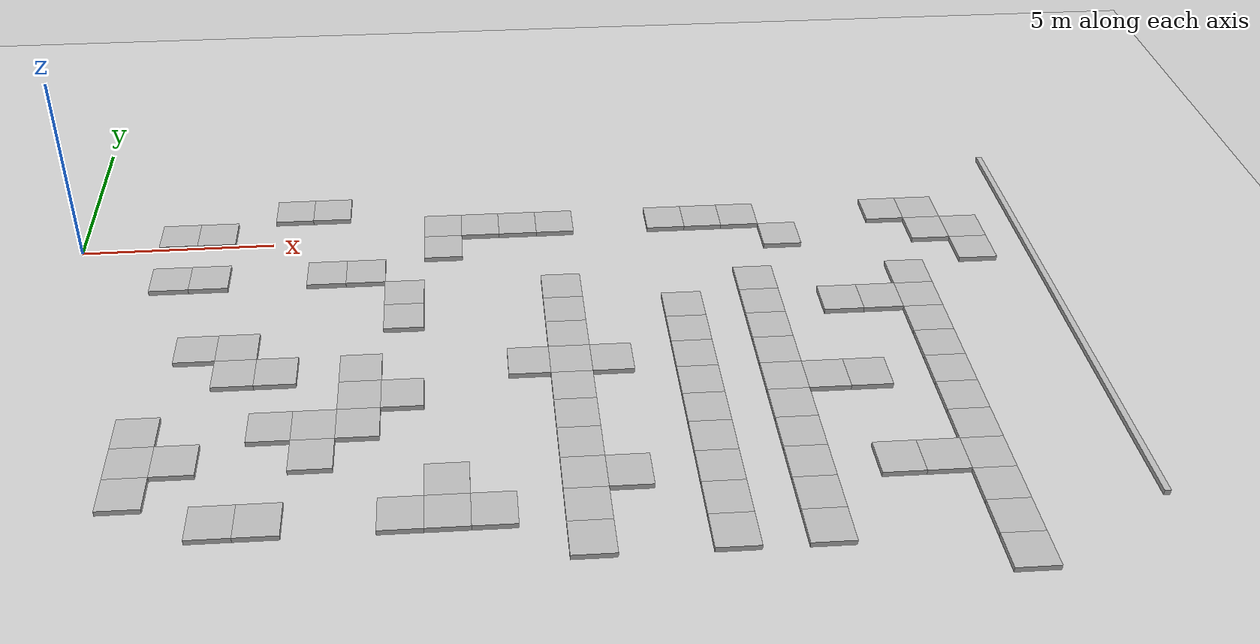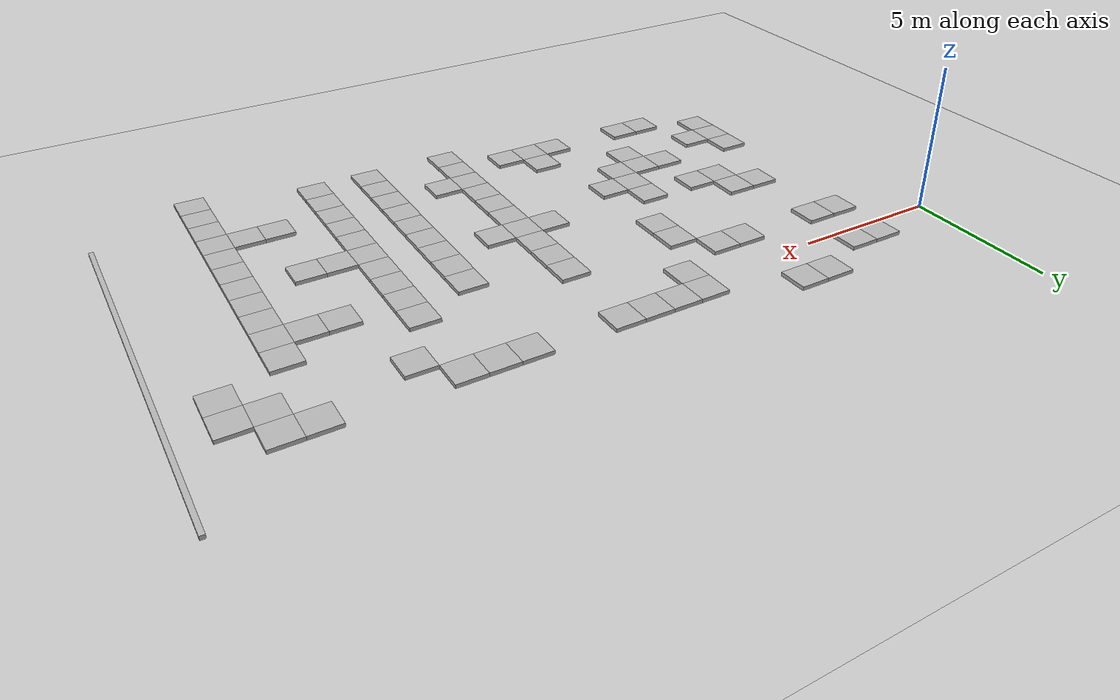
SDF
<sdf version="1.7">
 <world name="default">
  <model name="ground_plane">
   <static>1</static>
   <link name="link">
    <collision name="collision">
     <geometry><plane><normal>0 0 1</normal><size>100 100</size></plane></geometry>
     <surface>
      <contact><collide_bitmask>65535</collide_bitmask></contact>
      <friction><ode><mu>100</mu><mu2>50</mu2></ode></friction>
     </surface>
    </collision>
    <visual name="visual">
     <cast_shadows>0</cast_shadows>
     <geometry><plane><normal>0 0 1</normal><size>100 100</size></plane></geometry>
     <material>
      <script><uri>file://media/materials/scripts/gazebo.material</uri><name>Gazebo/Grey</name></script>
     </material>
    </visual>
   </link>
  </model>
  <model name="concrete_cube_1m_6">
   <static>1</static>
   <link name="link">
    <collision name="concrete_cube_1m">
     <pose>-0 0 0.3 0 -0 0</pose>
     <geometry><box><size>1 1 0.6</size></box></geometry>
    </collision>
    <visual name="concrete_cube_1m_visual">
     <geometry><mesh><uri>model://concrete_cube_1m/meshes/concrete_cube_1m.dae</uri></mesh></geometry>
    </visual>
   </link>
   <pose>6.5 1.5 0 0 -0 0</pose>
  </model>
  <model name="concrete_cube_1m_7">
   <static>1</static>
   <link name="link">
    <collision name="concrete_cube_1m">
     <pose>-0 0 0.3 0 -0 0</pose>
     <geometry><box><size>1 1 0.6</size></box></geometry>
    </collision>
    <visual name="concrete_cube_1m_visual">
     <geometry><mesh><uri>model://concrete_cube_1m/meshes/concrete_cube_1m.dae</uri></mesh></geometry>
    </visual>
   </link>
   <pose>5.5 1.5 0 0 -0 0</pose>
  </model>
  <model name="concrete_cube_1m_10">
   <static>1</static>
   <link name="link">
    <collision name="concrete_cube_1m">
     <pose>-0 0 0.3 0 -0 0</pose>
     <geometry><box><size>1 1 0.6</size></box></geometry>
    </collision>
    <visual name="concrete_cube_1m_visual">
     <geometry><mesh><uri>model://concrete_cube_1m/meshes/concrete_cube_1m.dae</uri></mesh></geometry>
    </visual>
   </link>
   <pose>4.5 -5.5 0 0 -0 0</pose>
  </model>
  <model name="concrete_cube_1m_11">
   <static>1</static>
   <link name="link">
    <collision name="concrete_cube_1m">
     <pose>-0 0 0.3 0 -0 0</pose>
     <geometry><box><size>1 1 0.6</size></box></geometry>
    </collision>
    <visual name="concrete_cube_1m_visual">
     <geometry><mesh><uri>model://concrete_cube_1m/meshes/concrete_cube_1m.dae</uri></mesh></geometry>
    </visual>
   </link>
   <pose>5.5 -5.5 0 0 -0 0</pose>
  </model>
  <model name="concrete_cube_1m_35">
   <static>1</static>
   <link name="link">
    <collision name="concrete_cube_1m">
     <pose>-0 0 0.3 0 -0 0</pose>
     <geometry><box><size>1 1 0.6</size></box></geometry>
    </collision>
    <visual name="concrete_cube_1m_visual">
     <geometry><mesh><uri>model://concrete_cube_1m/meshes/concrete_cube_1m.dae</uri></mesh></geometry>
    </visual>
   </link>
   <pose>9.5 0.5 0 0 -0 0</pose>
  </model>
  <model name="concrete_cube_1m_41">
   <static>1</static>
   <link name="link">
    <collision name="concrete_cube_1m">
     <pose>-0 0 0.3 0 -0 0</pose>
     <geometry><box><size>1 1 0.6</size></box></geometry>
    </collision>
    <visual name="concrete_cube_1m_visual">
     <geometry><mesh><uri>model://concrete_cube_1m/meshes/concrete_cube_1m.dae</uri></mesh></geometry>
    </visual>
   </link>
   <pose>3.5 0.5 0 0 -0 0</pose>
  </model>
  <model name="concrete_cube_1m_42">
   <static>1</static>
   <link name="link">
    <collision name="concrete_cube_1m">
     <pose>-0 0 0.3 0 -0 0</pose>
     <geometry><box><size>1 1 0.6</size></box></geometry>
    </collision>
    <visual name="concrete_cube_1m_visual">
     <geometry><mesh><uri>model://concrete_cube_1m/meshes/concrete_cube_1m.dae</uri></mesh></geometry>
    </visual>
   </link>
   <pose>2.5 0.5 0 0 -0 0</pose>
  </model>
  <model name="concrete_cube_1m_64">
   <static>1</static>
   <link name="link">
    <collision name="concrete_cube_1m">
     <pose>-0 0 0.3 0 -0 0</pose>
     <geometry><box><size>1 1 0.6</size></box></geometry>
    </collision>
    <visual name="concrete_cube_1m_visual">
     <geometry><mesh><uri>model://concrete_cube_1m/meshes/concrete_cube_1m.dae</uri></mesh></geometry>
    </visual>
   </link>
   <pose>7.5 -7.5 0 0 -0 0</pose>
  </model>
  <model name="concrete_cube_1m_65">
   <static>1</static>
   <link name="link">
    <collision name="concrete_cube_1m">
     <pose>-0 0 0.3 0 -0 0</pose>
     <geometry><box><size>1 1 0.6</size></box></geometry>
    </collision>
    <visual name="concrete_cube_1m_visual">
     <geometry><mesh><uri>model://concrete_cube_1m/meshes/concrete_cube_1m.dae</uri></mesh></geometry>
    </visual>
   </link>
   <pose>7.5 -6.5 0 0 -0 0</pose>
  </model>
  <model name="concrete_cube_1m_66">
   <static>1</static>
   <link name="link">
    <collision name="concrete_cube_1m">
     <pose>-0 0 0.3 0 -0 0</pose>
     <geometry><box><size>1 1 0.6</size></box></geometry>
    </collision>
    <visual name="concrete_cube_1m_visual">
     <geometry><mesh><uri>model://concrete_cube_1m/meshes/concrete_cube_1m.dae</uri></mesh></geometry>
    </visual>
   </link>
   <pose>7.5 -5.5 0 0 -0 0</pose>
  </model>
  <model name="concrete_cube_1m_67">
   <static>1</static>
   <link name="link">
    <collision name="concrete_cube_1m">
     <pose>-0 0 0.3 0 -0 0</pose>
     <geometry><box><size>1 1 0.6</size></box></geometry>
    </collision>
    <visual name="concrete_cube_1m_visual">
     <geometry><mesh><uri>model://concrete_cube_1m/meshes/concrete_cube_1m.dae</uri></mesh></geometry>
    </visual>
   </link>
   <pose>6.5 -7.5 0 0 -0 0</pose>
  </model>
  <model name="concrete_cube_1m_68">
   <static>1</static>
   <link name="link">
    <collision name="concrete_cube_1m">
     <pose>-0 0 0.3 0 -0 0</pose>
     <geometry><box><size>1 1 0.6</size></box></geometry>
    </collision>
    <visual name="concrete_cube_1m_visual">
     <geometry><mesh><uri>model://concrete_cube_1m/meshes/concrete_cube_1m.dae</uri></mesh></geometry>
    </visual>
   </link>
   <pose>5.5 -7.5 0 0 -0 0</pose>
  </model>
  <model name="concrete_cube_1m_69">
   <static>1</static>
   <link name="link">
    <collision name="concrete_cube_1m">
     <pose>-0 0 0.3 0 -0 0</pose>
     <geometry><box><size>1 1 0.6</size></box></geometry>
    </collision>
    <visual name="concrete_cube_1m_visual">
     <geometry><mesh><uri>model://concrete_cube_1m/meshes/concrete_cube_1m.dae</uri></mesh></geometry>
    </visual>
   </link>
   <pose>8.5 -2.5 0 0 -0 0</pose>
  </model>
  <model name="concrete_cube_1m_70">
   <static>1</static>
   <link name="link">
    <collision name="concrete_cube_1m">
     <pose>-0 0 0.3 0 -0 0</pose>
     <geometry><box><size>1 1 0.6</size></box></geometry>
    </collision>
    <visual name="concrete_cube_1m_visual">
     <geometry><mesh><uri>model://concrete_cube_1m/meshes/concrete_cube_1m.dae</uri></mesh></geometry>
    </visual>
   </link>
   <pose>9.5 -0.5 0 0 -0 0</pose>
  </model>
  <model name="concrete_cube_1m_71">
   <static>1</static>
   <link name="link">
    <collision name="concrete_cube_1m">
     <pose>-0 0 0.3 0 -0 0</pose>
     <geometry><box><size>1 1 0.6</size></box></geometry>
    </collision>
    <visual name="concrete_cube_1m_visual">
     <geometry><mesh><uri>model://concrete_cube_1m/meshes/concrete_cube_1m.dae</uri></mesh></geometry>
    </visual>
   </link>
   <pose>7.5 -1.5 0 0 -0 0</pose>
  </model>
  <model name="concrete_cube_1m_72">
   <static>1</static>
   <link name="link">
    <collision name="concrete_cube_1m">
     <pose>-0 0 0.3 0 -0 0</pose>
     <geometry><box><size>1 1 0.6</size></box></geometry>
    </collision>
    <visual name="concrete_cube_1m_visual">
     <geometry><mesh><uri>model://concrete_cube_1m/meshes/concrete_cube_1m.dae</uri></mesh></geometry>
    </visual>
   </link>
   <pose>8.5 -3.5 0 0 -0 0</pose>
  </model>
  <model name="concrete_cube_1m_73">
   <static>1</static>
   <link name="link">
    <collision name="concrete_cube_1m">
     <pose>-0 0 0.3 0 -0 0</pose>
     <geometry><box><size>1 1 0.6</size></box></geometry>
    </collision>
    <visual name="concrete_cube_1m_visual">
     <geometry><mesh><uri>model://concrete_cube_1m/meshes/concrete_cube_1m.dae</uri></mesh></geometry>
    </visual>
   </link>
   <pose>6.5 -1.5 0 0 -0 0</pose>
  </model>
  <model name="concrete_cube_1m_74">
   <static>1</static>
   <link name="link">
    <collision name="concrete_cube_1m">
     <pose>-0 0 0.3 0 -0 0</pose>
     <geometry><box><size>1 1 0.6</size></box></geometry>
    </collision>
    <visual name="concrete_cube_1m_visual">
     <geometry><mesh><uri>model://concrete_cube_1m/meshes/concrete_cube_1m.dae</uri></mesh></geometry>
    </visual>
   </link>
   <pose>4.5 -4.5 0 0 -0 0</pose>
  </model>
  <model name="concrete_cube_1m_75">
   <static>1</static>
   <link name="link">
    <collision name="concrete_cube_1m">
     <pose>-0 0 0.3 0 -0 0</pose>
     <geometry><box><size>1 1 0.6</size></box></geometry>
    </collision>
    <visual name="concrete_cube_1m_visual">
     <geometry><mesh><uri>model://concrete_cube_1m/meshes/concrete_cube_1m.dae</uri></mesh></geometry>
    </visual>
   </link>
   <pose>3.5 -4.5 0 0 -0 0</pose>
  </model>
  <model name="concrete_cube_1m_82">
   <static>1</static>
   <link name="link">
    <collision name="concrete_cube_1m">
     <pose>-0 0 0.3 0 -0 0</pose>
     <geometry><box><size>1 1 0.6</size></box></geometry>
    </collision>
    <visual name="concrete_cube_1m_visual">
     <geometry><mesh><uri>model://concrete_cube_1m/meshes/concrete_cube_1m.dae</uri></mesh></geometry>
    </visual>
   </link>
   <pose>2.5 -8.5 0 0 -0 0</pose>
  </model>
  <model name="concrete_cube_1m_83">
   <static>1</static>
   <link name="link">
    <collision name="concrete_cube_1m">
     <pose>-0 0 0.3 0 -0 0</pose>
     <geometry><box><size>1 1 0.6</size></box></geometry>
    </collision>
    <visual name="concrete_cube_1m_visual">
     <geometry><mesh><uri>model://concrete_cube_1m/meshes/concrete_cube_1m.dae</uri></mesh></geometry>
    </visual>
   </link>
   <pose>3.5 -8.5 0 0 -0 0</pose>
  </model>
  <model name="concrete_cube_1m_84">
   <static>1</static>
   <link name="link">
    <collision name="concrete_cube_1m">
     <pose>-0 0 0.3 0 -0 0</pose>
     <geometry><box><size>1 1 0.6</size></box></geometry>
    </collision>
    <visual name="concrete_cube_1m_visual">
     <geometry><mesh><uri>model://concrete_cube_1m/meshes/concrete_cube_1m.dae</uri></mesh></geometry>
    </visual>
   </link>
   <pose>3.5 -1.5 0 0 -0 0</pose>
  </model>
  <model name="concrete_cube_1m_85">
   <static>1</static>
   <link name="link">
    <collision name="concrete_cube_1m">
     <pose>-0 0 0.3 0 -0 0</pose>
     <geometry><box><size>1 1 0.6</size></box></geometry>
    </collision>
    <visual name="concrete_cube_1m_visual">
     <geometry><mesh><uri>model://concrete_cube_1m/meshes/concrete_cube_1m.dae</uri></mesh></geometry>
    </visual>
   </link>
   <pose>2.5 -1.5 0 0 -0 0</pose>
  </model>
  <model name="concrete_cube_1m_87">
   <static>1</static>
   <link name="link">
    <collision name="concrete_cube_1m">
     <pose>-0 0 0.3 0 -0 0</pose>
     <geometry><box><size>1 1 0.6</size></box></geometry>
    </collision>
    <visual name="concrete_cube_1m_visual">
     <geometry><mesh><uri>model://concrete_cube_1m/meshes/concrete_cube_1m.dae</uri></mesh></geometry>
    </visual>
   </link>
   <pose>2.5 -7.5 0 0 -0 0</pose>
  </model>
  <model name="concrete_cube_1m_104">
   <static>1</static>
   <link name="link">
    <collision name="concrete_cube_1m">
     <pose>-0 0 0.3 0 -0 0</pose>
     <geometry><box><size>1 1 0.6</size></box></geometry>
    </collision>
    <visual name="concrete_cube_1m_visual">
     <geometry><mesh><uri>model://concrete_cube_1m/meshes/concrete_cube_1m.dae</uri></mesh></geometry>
    </visual>
   </link>
   <pose>6.5 -8.5 0 0 -0 0</pose>
  </model>
  <model name="concrete_cube_1m_105">
   <static>1</static>
   <link name="link">
    <collision name="concrete_cube_1m">
     <pose>-0 0 0.3 0 -0 0</pose>
     <geometry><box><size>1 1 0.6</size></box></geometry>
    </collision>
    <visual name="concrete_cube_1m_visual">
     <geometry><mesh><uri>model://concrete_cube_1m/meshes/concrete_cube_1m.dae</uri></mesh></geometry>
    </visual>
   </link>
   <pose>8.5 -6.5 0 0 -0 0</pose>
  </model>
  <model name="concrete_cube_1m_106">
   <static>1</static>
   <link name="link">
    <collision name="concrete_cube_1m">
     <pose>-0 0 0.3 0 -0 0</pose>
     <geometry><box><size>1 1 0.6</size></box></geometry>
    </collision>
    <visual name="concrete_cube_1m_visual">
     <geometry><mesh><uri>model://concrete_cube_1m/meshes/concrete_cube_1m.dae</uri></mesh></geometry>
    </visual>
   </link>
   <pose>9.5 -9.5 0 0 -0 0</pose>
  </model>
  <model name="concrete_cube_1m_115">
   <static>1</static>
   <link name="link">
    <collision name="concrete_cube_1m">
     <pose>-0 0 0.3 0 -0 0</pose>
     <geometry><box><size>1 1 0.6</size></box></geometry>
    </collision>
    <visual name="concrete_cube_1m_visual">
     <geometry><mesh><uri>model://concrete_cube_1m/meshes/concrete_cube_1m.dae</uri></mesh></geometry>
    </visual>
   </link>
   <pose>10.5 0.5 0 0 -0 0</pose>
  </model>
  <model name="concrete_cube_1m_116">
   <static>1</static>
   <link name="link">
    <collision name="concrete_cube_1m">
     <pose>-0 0 0.3 0 -0 0</pose>
     <geometry><box><size>1 1 0.6</size></box></geometry>
    </collision>
    <visual name="concrete_cube_1m_visual">
     <geometry><mesh><uri>model://concrete_cube_1m/meshes/concrete_cube_1m.dae</uri></mesh></geometry>
    </visual>
   </link>
   <pose>11.5 0.5 0 0 -0 0</pose>
  </model>
  <model name="concrete_cube_1m_117">
   <static>1</static>
   <link name="link">
    <collision name="concrete_cube_1m">
     <pose>-0 0 0.3 0 -0 0</pose>
     <geometry><box><size>1 1 0.6</size></box></geometry>
    </collision>
    <visual name="concrete_cube_1m_visual">
     <geometry><mesh><uri>model://concrete_cube_1m/meshes/concrete_cube_1m.dae</uri></mesh></geometry>
    </visual>
   </link>
   <pose>12.5 0.5 0 0 -0 0</pose>
  </model>
  <model name="concrete_cube_1m_211">
   <static>1</static>
   <link name="link">
    <collision name="concrete_cube_1m">
     <pose>-0 0 0.3 0 -0 0</pose>
     <geometry><box><size>1 1 0.6</size></box></geometry>
    </collision>
    <visual name="concrete_cube_1m_visual">
     <geometry><mesh><uri>model://concrete_cube_1m/meshes/concrete_cube_1m.dae</uri></mesh></geometry>
    </visual>
   </link>
   <pose>2.5 -9.5 0 0 -0 0</pose>
  </model>
  <model name="concrete_cube_1m_216">
   <static>1</static>
   <link name="link">
    <collision name="concrete_cube_1m">
     <pose>-0 0 0.3 0 -0 0</pose>
     <geometry><box><size>1 1 0.6</size></box></geometry>
    </collision>
    <visual name="concrete_cube_1m_visual">
     <geometry><mesh><uri>model://concrete_cube_1m/meshes/concrete_cube_1m.dae</uri></mesh></geometry>
    </visual>
   </link>
   <pose>9.5 -10.5 0 0 -0 0</pose>
  </model>
  <model name="concrete_cube_1m_217">
   <static>1</static>
   <link name="link">
    <collision name="concrete_cube_1m">
     <pose>-0 0 0.3 0 -0 0</pose>
     <geometry><box><size>1 1 0.6</size></box></geometry>
    </collision>
    <visual name="concrete_cube_1m_visual">
     <geometry><mesh><uri>model://concrete_cube_1m/meshes/concrete_cube_1m.dae</uri></mesh></geometry>
    </visual>
   </link>
   <pose>10.5 -10.5 0 0 -0 0</pose>
  </model>
  <model name="concrete_cube_1m_218">
   <static>1</static>
   <link name="link">
    <collision name="concrete_cube_1m">
     <pose>-0 0 0.3 0 -0 0</pose>
     <geometry><box><size>1 1 0.6</size></box></geometry>
    </collision>
    <visual name="concrete_cube_1m_visual">
     <geometry><mesh><uri>model://concrete_cube_1m/meshes/concrete_cube_1m.dae</uri></mesh></geometry>
    </visual>
   </link>
   <pose>8.5 -10.5 0 0 -0 0</pose>
  </model>
  <model name="concrete_cube_1m_227">
   <static>1</static>
   <link name="link">
    <collision name="concrete_cube_1m">
     <pose>-0 0 0.3 0 -0 0</pose>
     <geometry><box><size>1 1 0.6</size></box></geometry>
    </collision>
    <visual name="concrete_cube_1m_visual">
     <geometry><mesh><uri>model://concrete_cube_1m/meshes/concrete_cube_1m.dae</uri></mesh></geometry>
    </visual>
   </link>
   <pose>12.5 -11.5 0 0 -0 0</pose>
  </model>
  <model name="concrete_cube_1m_228">
   <static>1</static>
   <link name="link">
    <collision name="concrete_cube_1m">
     <pose>-0 0 0.3 0 -0 0</pose>
     <geometry><box><size>1 1 0.6</size></box></geometry>
    </collision>
    <visual name="concrete_cube_1m_visual">
     <geometry><mesh><uri>model://concrete_cube_1m/meshes/concrete_cube_1m.dae</uri></mesh></geometry>
    </visual>
   </link>
   <pose>12.5 -10.5 0 0 -0 0</pose>
  </model>
  <model name="concrete_cube_1m_229">
   <static>1</static>
   <link name="link">
    <collision name="concrete_cube_1m">
     <pose>-0 0 0.3 0 -0 0</pose>
     <geometry><box><size>1 1 0.6</size></box></geometry>
    </collision>
    <visual name="concrete_cube_1m_visual">
     <geometry><mesh><uri>model://concrete_cube_1m/meshes/concrete_cube_1m.dae</uri></mesh></geometry>
    </visual>
   </link>
   <pose>12.5 -9.5 0 0 -0 0</pose>
  </model>
  <model name="concrete_cube_1m_230">
   <static>1</static>
   <link name="link">
    <collision name="concrete_cube_1m">
     <pose>-0 0 0.3 0 -0 0</pose>
     <geometry><box><size>1 1 0.6</size></box></geometry>
    </collision>
    <visual name="concrete_cube_1m_visual">
     <geometry><mesh><uri>model://concrete_cube_1m/meshes/concrete_cube_1m.dae</uri></mesh></geometry>
    </visual>
   </link>
   <pose>12.5 -8.5 0 0 -0 0</pose>
  </model>
  <model name="concrete_cube_1m_231">
   <static>1</static>
   <link name="link">
    <collision name="concrete_cube_1m">
     <pose>-0 0 0.3 0 -0 0</pose>
     <geometry><box><size>1 1 0.6</size></box></geometry>
    </collision>
    <visual name="concrete_cube_1m_visual">
     <geometry><mesh><uri>model://concrete_cube_1m/meshes/concrete_cube_1m.dae</uri></mesh></geometry>
    </visual>
   </link>
   <pose>12.5 -7.5 0 0 -0 0</pose>
  </model>
  <model name="concrete_cube_1m_232">
   <static>1</static>
   <link name="link">
    <collision name="concrete_cube_1m">
     <pose>-0 0 0.3 0 -0 0</pose>
     <geometry><box><size>1 1 0.6</size></box></geometry>
    </collision>
    <visual name="concrete_cube_1m_visual">
     <geometry><mesh><uri>model://concrete_cube_1m/meshes/concrete_cube_1m.dae</uri></mesh></geometry>
    </visual>
   </link>
   <pose>12.5 -6.5 0 0 -0 0</pose>
  </model>
  <model name="concrete_cube_1m_233">
   <static>1</static>
   <link name="link">
    <collision name="concrete_cube_1m">
     <pose>-0 0 0.3 0 -0 0</pose>
     <geometry><box><size>1 1 0.6</size></box></geometry>
    </collision>
    <visual name="concrete_cube_1m_visual">
     <geometry><mesh><uri>model://concrete_cube_1m/meshes/concrete_cube_1m.dae</uri></mesh></geometry>
    </visual>
   </link>
   <pose>12.5 -5.5 0 0 -0 0</pose>
  </model>
  <model name="concrete_cube_1m_234">
   <static>1</static>
   <link name="link">
    <collision name="concrete_cube_1m">
     <pose>-0 0 0.3 0 -0 0</pose>
     <geometry><box><size>1 1 0.6</size></box></geometry>
    </collision>
    <visual name="concrete_cube_1m_visual">
     <geometry><mesh><uri>model://concrete_cube_1m/meshes/concrete_cube_1m.dae</uri></mesh></geometry>
    </visual>
   </link>
   <pose>12.5 -4.5 0 0 -0 0</pose>
  </model>
  <model name="concrete_cube_1m_235">
   <static>1</static>
   <link name="link">
    <collision name="concrete_cube_1m">
     <pose>-0 0 0.3 0 -0 0</pose>
     <geometry><box><size>1 1 0.6</size></box></geometry>
    </collision>
    <visual name="concrete_cube_1m_visual">
     <geometry><mesh><uri>model://concrete_cube_1m/meshes/concrete_cube_1m.dae</uri></mesh></geometry>
    </visual>
   </link>
   <pose>12.5 -3.5 0 0 -0 0</pose>
  </model>
  <model name="concrete_cube_1m_236">
   <static>1</static>
   <link name="link">
    <collision name="concrete_cube_1m">
     <pose>-0 0 0.3 0 -0 0</pose>
     <geometry><box><size>1 1 0.6</size></box></geometry>
    </collision>
    <visual name="concrete_cube_1m_visual">
     <geometry><mesh><uri>model://concrete_cube_1m/meshes/concrete_cube_1m.dae</uri></mesh></geometry>
    </visual>
   </link>
   <pose>12.5 -2.5 0 0 -0 0</pose>
  </model>
  <model name="concrete_cube_1m_238">
   <static>1</static>
   <link name="link">
    <collision name="concrete_cube_1m">
     <pose>-0 0 0.3 0 -0 0</pose>
     <geometry><box><size>1 1 0.6</size></box></geometry>
    </collision>
    <visual name="concrete_cube_1m_visual">
     <geometry><mesh><uri>model://concrete_cube_1m/meshes/concrete_cube_1m.dae</uri></mesh></geometry>
    </visual>
   </link>
   <pose>11.5 -5.5 0 0 -0 0</pose>
  </model>
  <model name="concrete_cube_1m_239">
   <static>1</static>
   <link name="link">
    <collision name="concrete_cube_1m">
     <pose>-0 0 0.3 0 -0 0</pose>
     <geometry><box><size>1 1 0.6</size></box></geometry>
    </collision>
    <visual name="concrete_cube_1m_visual">
     <geometry><mesh><uri>model://concrete_cube_1m/meshes/concrete_cube_1m.dae</uri></mesh></geometry>
    </visual>
   </link>
   <pose>13.5 -9.5 0 0 -0 0</pose>
  </model>
  <model name="concrete_cube_1m_240">
   <static>1</static>
   <link name="link">
    <collision name="concrete_cube_1m">
     <pose>-0 0 0.3 0 -0 0</pose>
     <geometry><box><size>1 1 0.6</size></box></geometry>
    </collision>
    <visual name="concrete_cube_1m_visual">
     <geometry><mesh><uri>model://concrete_cube_1m/meshes/concrete_cube_1m.dae</uri></mesh></geometry>
    </visual>
   </link>
   <pose>13.5 -5.5 0 0 -0 0</pose>
  </model>
  <model name="concrete_cube_1m_244">
   <static>1</static>
   <link name="link">
    <collision name="concrete_cube_1m">
     <pose>-0 0 0.3 0 -0 0</pose>
     <geometry><box><size>1 1 0.6</size></box></geometry>
    </collision>
    <visual name="concrete_cube_1m_visual">
     <geometry><mesh><uri>model://concrete_cube_1m/meshes/concrete_cube_1m.dae</uri></mesh></geometry>
    </visual>
   </link>
   <pose>5.5 -10.5 0 0 -0 0</pose>
  </model>
  <model name="concrete_cube_1m_245">
   <static>1</static>
   <link name="link">
    <collision name="concrete_cube_1m">
     <pose>-0 0 0.3 0 -0 0</pose>
     <geometry><box><size>1 1 0.6</size></box></geometry>
    </collision>
    <visual name="concrete_cube_1m_visual">
     <geometry><mesh><uri>model://concrete_cube_1m/meshes/concrete_cube_1m.dae</uri></mesh></geometry>
    </visual>
   </link>
   <pose>4.5 -10.5 0 0 -0 0</pose>
  </model>
  <model name="concrete_barrier_14m_7">
   <static>1</static>
   <link name="link">
    <collision name="concrete_barrier_14m_01">
     <pose>-0 0 0.3 0 -0 0</pose>
     <geometry><box><size>14 0.15 0.6</size></box></geometry>
    </collision>
    <visual name="concrete_barrier_14m_visual">
     <geometry><mesh><uri>model://concrete_barrier_14m/meshes/concrete_barrier_14m.dae</uri></mesh></geometry>
    </visual>
   </link>
   <pose>25 -4 0 0 -0 0</pose>
  </model>
  <model name="concrete_cube_1m_265">
   <static>1</static>
   <link name="link">
    <collision name="concrete_cube_1m">
     <pose>-0 0 0.3 0 -0 0</pose>
     <geometry><box><size>1 1 0.6</size></box></geometry>
    </collision>
    <visual name="concrete_cube_1m_visual">
     <geometry><mesh><uri>model://concrete_cube_1m/meshes/concrete_cube_1m.dae</uri></mesh></geometry>
    </visual>
   </link>
   <pose>15.5 0.5 0 0 -0 0</pose>
  </model>
  <model name="concrete_cube_1m_266">
   <static>1</static>
   <link name="link">
    <collision name="concrete_cube_1m">
     <pose>-0 0 0.3 0 -0 0</pose>
     <geometry><box><size>1 1 0.6</size></box></geometry>
    </collision>
    <visual name="concrete_cube_1m_visual">
     <geometry><mesh><uri>model://concrete_cube_1m/meshes/concrete_cube_1m.dae</uri></mesh></geometry>
    </visual>
   </link>
   <pose>16.5 0.5 0 0 -0 0</pose>
  </model>
  <model name="concrete_cube_1m_267">
   <static>1</static>
   <link name="link">
    <collision name="concrete_cube_1m">
     <pose>-0 0 0.3 0 -0 0</pose>
     <geometry><box><size>1 1 0.6</size></box></geometry>
    </collision>
    <visual name="concrete_cube_1m_visual">
     <geometry><mesh><uri>model://concrete_cube_1m/meshes/concrete_cube_1m.dae</uri></mesh></geometry>
    </visual>
   </link>
   <pose>17.5 0.5 0 0 -0 0</pose>
  </model>
  <model name="concrete_cube_1m_434">
   <static>1</static>
   <link name="link">
    <collision name="concrete_cube_1m">
     <pose>-0 0 0.3 0 -0 0</pose>
     <geometry><box><size>1 1 0.6</size></box></geometry>
    </collision>
    <visual name="concrete_cube_1m_visual">
     <geometry><mesh><uri>model://concrete_cube_1m/meshes/concrete_cube_1m.dae</uri></mesh></geometry>
    </visual>
   </link>
   <pose>17.5 -11.5 0 0 -0 0</pose>
  </model>
  <model name="concrete_cube_1m_435">
   <static>1</static>
   <link name="link">
    <collision name="concrete_cube_1m">
     <pose>-0 0 0.3 0 -0 0</pose>
     <geometry><box><size>1 1 0.6</size></box></geometry>
    </collision>
    <visual name="concrete_cube_1m_visual">
     <geometry><mesh><uri>model://concrete_cube_1m/meshes/concrete_cube_1m.dae</uri></mesh></geometry>
    </visual>
   </link>
   <pose>17.5 -10.5 0 0 -0 0</pose>
  </model>
  <model name="concrete_cube_1m_436">
   <static>1</static>
   <link name="link">
    <collision name="concrete_cube_1m">
     <pose>-0 0 0.3 0 -0 0</pose>
     <geometry><box><size>1 1 0.6</size></box></geometry>
    </collision>
    <visual name="concrete_cube_1m_visual">
     <geometry><mesh><uri>model://concrete_cube_1m/meshes/concrete_cube_1m.dae</uri></mesh></geometry>
    </visual>
   </link>
   <pose>17.5 -9.5 0 0 -0 0</pose>
  </model>
  <model name="concrete_cube_1m_437">
   <static>1</static>
   <link name="link">
    <collision name="concrete_cube_1m">
     <pose>-0 0 0.3 0 -0 0</pose>
     <geometry><box><size>1 1 0.6</size></box></geometry>
    </collision>
    <visual name="concrete_cube_1m_visual">
     <geometry><mesh><uri>model://concrete_cube_1m/meshes/concrete_cube_1m.dae</uri></mesh></geometry>
    </visual>
   </link>
   <pose>17.5 -8.5 0 0 -0 0</pose>
  </model>
  <model name="concrete_cube_1m_438">
   <static>1</static>
   <link name="link">
    <collision name="concrete_cube_1m">
     <pose>-0 0 0.3 0 -0 0</pose>
     <geometry><box><size>1 1 0.6</size></box></geometry>
    </collision>
    <visual name="concrete_cube_1m_visual">
     <geometry><mesh><uri>model://concrete_cube_1m/meshes/concrete_cube_1m.dae</uri></mesh></geometry>
    </visual>
   </link>
   <pose>17.5 -7.5 0 0 -0 0</pose>
  </model>
  <model name="concrete_cube_1m_439">
   <static>1</static>
   <link name="link">
    <collision name="concrete_cube_1m">
     <pose>-0 0 0.3 0 -0 0</pose>
     <geometry><box><size>1 1 0.6</size></box></geometry>
    </collision>
    <visual name="concrete_cube_1m_visual">
     <geometry><mesh><uri>model://concrete_cube_1m/meshes/concrete_cube_1m.dae</uri></mesh></geometry>
    </visual>
   </link>
   <pose>17.5 -6.5 0 0 -0 0</pose>
  </model>
  <model name="concrete_cube_1m_440">
   <static>1</static>
   <link name="link">
    <collision name="concrete_cube_1m">
     <pose>-0 0 0.3 0 -0 0</pose>
     <geometry><box><size>1 1 0.6</size></box></geometry>
    </collision>
    <visual name="concrete_cube_1m_visual">
     <geometry><mesh><uri>model://concrete_cube_1m/meshes/concrete_cube_1m.dae</uri></mesh></geometry>
    </visual>
   </link>
   <pose>17.5 -5.5 0 0 -0 0</pose>
  </model>
  <model name="concrete_cube_1m_441">
   <static>1</static>
   <link name="link">
    <collision name="concrete_cube_1m">
     <pose>-0 0 0.3 0 -0 0</pose>
     <geometry><box><size>1 1 0.6</size></box></geometry>
    </collision>
    <visual name="concrete_cube_1m_visual">
     <geometry><mesh><uri>model://concrete_cube_1m/meshes/concrete_cube_1m.dae</uri></mesh></geometry>
    </visual>
   </link>
   <pose>17.5 -4.5 0 0 -0 0</pose>
  </model>
  <model name="concrete_cube_1m_442">
   <static>1</static>
   <link name="link">
    <collision name="concrete_cube_1m">
     <pose>-0 0 0.3 0 -0 0</pose>
     <geometry><box><size>1 1 0.6</size></box></geometry>
    </collision>
    <visual name="concrete_cube_1m_visual">
     <geometry><mesh><uri>model://concrete_cube_1m/meshes/concrete_cube_1m.dae</uri></mesh></geometry>
    </visual>
   </link>
   <pose>17.5 -3.5 0 0 -0 0</pose>
  </model>
  <model name="concrete_cube_1m_443">
   <static>1</static>
   <link name="link">
    <collision name="concrete_cube_1m">
     <pose>-0 0 0.3 0 -0 0</pose>
     <geometry><box><size>1 1 0.6</size></box></geometry>
    </collision>
    <visual name="concrete_cube_1m_visual">
     <geometry><mesh><uri>model://concrete_cube_1m/meshes/concrete_cube_1m.dae</uri></mesh></geometry>
    </visual>
   </link>
   <pose>17.5 -2.5 0 0 -0 0</pose>
  </model>
  <model name="concrete_cube_1m_458">
   <static>1</static>
   <link name="link">
    <collision name="concrete_cube_1m">
     <pose>-0 0 0.3 0 -0 0</pose>
     <geometry><box><size>1 1 0.6</size></box></geometry>
    </collision>
    <visual name="concrete_cube_1m_visual">
     <geometry><mesh><uri>model://concrete_cube_1m/meshes/concrete_cube_1m.dae</uri></mesh></geometry>
    </visual>
   </link>
   <pose>15.5 -11.5 0 0 -0 0</pose>
  </model>
  <model name="concrete_cube_1m_459">
   <static>1</static>
   <link name="link">
    <collision name="concrete_cube_1m">
     <pose>-0 0 0.3 0 -0 0</pose>
     <geometry><box><size>1 1 0.6</size></box></geometry>
    </collision>
    <visual name="concrete_cube_1m_visual">
     <geometry><mesh><uri>model://concrete_cube_1m/meshes/concrete_cube_1m.dae</uri></mesh></geometry>
    </visual>
   </link>
   <pose>15.5 -10.5 0 0 -0 0</pose>
  </model>
  <model name="concrete_cube_1m_460">
   <static>1</static>
   <link name="link">
    <collision name="concrete_cube_1m">
     <pose>-0 0 0.3 0 -0 0</pose>
     <geometry><box><size>1 1 0.6</size></box></geometry>
    </collision>
    <visual name="concrete_cube_1m_visual">
     <geometry><mesh><uri>model://concrete_cube_1m/meshes/concrete_cube_1m.dae</uri></mesh></geometry>
    </visual>
   </link>
   <pose>15.5 -9.5 0 0 -0 0</pose>
  </model>
  <model name="concrete_cube_1m_461">
   <static>1</static>
   <link name="link">
    <collision name="concrete_cube_1m">
     <pose>-0 0 0.3 0 -0 0</pose>
     <geometry><box><size>1 1 0.6</size></box></geometry>
    </collision>
    <visual name="concrete_cube_1m_visual">
     <geometry><mesh><uri>model://concrete_cube_1m/meshes/concrete_cube_1m.dae</uri></mesh></geometry>
    </visual>
   </link>
   <pose>15.5 -8.5 0 0 -0 0</pose>
  </model>
  <model name="concrete_cube_1m_462">
   <static>1</static>
   <link name="link">
    <collision name="concrete_cube_1m">
     <pose>-0 0 0.3 0 -0 0</pose>
     <geometry><box><size>1 1 0.6</size></box></geometry>
    </collision>
    <visual name="concrete_cube_1m_visual">
     <geometry><mesh><uri>model://concrete_cube_1m/meshes/concrete_cube_1m.dae</uri></mesh></geometry>
    </visual>
   </link>
   <pose>15.5 -7.5 0 0 -0 0</pose>
  </model>
  <model name="concrete_cube_1m_463">
   <static>1</static>
   <link name="link">
    <collision name="concrete_cube_1m">
     <pose>-0 0 0.3 0 -0 0</pose>
     <geometry><box><size>1 1 0.6</size></box></geometry>
    </collision>
    <visual name="concrete_cube_1m_visual">
     <geometry><mesh><uri>model://concrete_cube_1m/meshes/concrete_cube_1m.dae</uri></mesh></geometry>
    </visual>
   </link>
   <pose>15.5 -6.5 0 0 -0 0</pose>
  </model>
  <model name="concrete_cube_1m_464">
   <static>1</static>
   <link name="link">
    <collision name="concrete_cube_1m">
     <pose>-0 0 0.3 0 -0 0</pose>
     <geometry><box><size>1 1 0.6</size></box></geometry>
    </collision>
    <visual name="concrete_cube_1m_visual">
     <geometry><mesh><uri>model://concrete_cube_1m/meshes/concrete_cube_1m.dae</uri></mesh></geometry>
    </visual>
   </link>
   <pose>15.5 -5.5 0 0 -0 0</pose>
  </model>
  <model name="concrete_cube_1m_465">
   <static>1</static>
   <link name="link">
    <collision name="concrete_cube_1m">
     <pose>-0 0 0.3 0 -0 0</pose>
     <geometry><box><size>1 1 0.6</size></box></geometry>
    </collision>
    <visual name="concrete_cube_1m_visual">
     <geometry><mesh><uri>model://concrete_cube_1m/meshes/concrete_cube_1m.dae</uri></mesh></geometry>
    </visual>
   </link>
   <pose>15.5 -4.5 0 0 -0 0</pose>
  </model>
  <model name="concrete_cube_1m_466">
   <static>1</static>
   <link name="link">
    <collision name="concrete_cube_1m">
     <pose>-0 0 0.3 0 -0 0</pose>
     <geometry><box><size>1 1 0.6</size></box></geometry>
    </collision>
    <visual name="concrete_cube_1m_visual">
     <geometry><mesh><uri>model://concrete_cube_1m/meshes/concrete_cube_1m.dae</uri></mesh></geometry>
    </visual>
   </link>
   <pose>15.5 -3.5 0 0 -0 0</pose>
  </model>
  <model name="concrete_cube_1m_474">
   <static>1</static>
   <link name="link">
    <collision name="concrete_cube_1m">
     <pose>-0 0 0.3 0 -0 0</pose>
     <geometry><box><size>1 1 0.6</size></box></geometry>
    </collision>
    <visual name="concrete_cube_1m_visual">
     <geometry><mesh><uri>model://concrete_cube_1m/meshes/concrete_cube_1m.dae</uri></mesh></geometry>
    </visual>
   </link>
   <pose>19.5 -9.5 0 0 -0 0</pose>
  </model>
  <model name="concrete_cube_1m_475">
   <static>1</static>
   <link name="link">
    <collision name="concrete_cube_1m">
     <pose>-0 0 0.3 0 -0 0</pose>
     <geometry><box><size>1 1 0.6</size></box></geometry>
    </collision>
    <visual name="concrete_cube_1m_visual">
     <geometry><mesh><uri>model://concrete_cube_1m/meshes/concrete_cube_1m.dae</uri></mesh></geometry>
    </visual>
   </link>
   <pose>18.5 -6.5 0 0 -0 0</pose>
  </model>
  <model name="concrete_cube_1m_476">
   <static>1</static>
   <link name="link">
    <collision name="concrete_cube_1m">
     <pose>-0 0 0.3 0 -0 0</pose>
     <geometry><box><size>1 1 0.6</size></box></geometry>
    </collision>
    <visual name="concrete_cube_1m_visual">
     <geometry><mesh><uri>model://concrete_cube_1m/meshes/concrete_cube_1m.dae</uri></mesh></geometry>
    </visual>
   </link>
   <pose>19.5 -3.5 0 0 -0 0</pose>
  </model>
  <model name="concrete_cube_1m_477">
   <static>1</static>
   <link name="link">
    <collision name="concrete_cube_1m">
     <pose>-0 0 0.3 0 -0 0</pose>
     <geometry><box><size>1 1 0.6</size></box></geometry>
    </collision>
    <visual name="concrete_cube_1m_visual">
     <geometry><mesh><uri>model://concrete_cube_1m/meshes/concrete_cube_1m.dae</uri></mesh></geometry>
    </visual>
   </link>
   <pose>18.5 -0.5 0 0 -0 0</pose>
  </model>
  <model name="concrete_cube_1m_681">
   <static>1</static>
   <link name="link">
    <collision name="concrete_cube_1m">
     <pose>-0 0 0.3 0 -0 0</pose>
     <geometry><box><size>1 1 0.6</size></box></geometry>
    </collision>
    <visual name="concrete_cube_1m_visual">
     <geometry><mesh><uri>model://concrete_cube_1m/meshes/concrete_cube_1m.dae</uri></mesh></geometry>
    </visual>
   </link>
   <pose>21.5 0.5 0 0 -0 0</pose>
  </model>
  <model name="concrete_cube_1m_683">
   <static>1</static>
   <link name="link">
    <collision name="concrete_cube_1m">
     <pose>-0 0 0.3 0 -0 0</pose>
     <geometry><box><size>1 1 0.6</size></box></geometry>
    </collision>
    <visual name="concrete_cube_1m_visual">
     <geometry><mesh><uri>model://concrete_cube_1m/meshes/concrete_cube_1m.dae</uri></mesh></geometry>
    </visual>
   </link>
   <pose>22.5 0.5 0 0 -0 0</pose>
  </model>
  <model name="concrete_cube_1m_684">
   <static>1</static>
   <link name="link">
    <collision name="concrete_cube_1m">
     <pose>-0 0 0.3 0 -0 0</pose>
     <geometry><box><size>1 1 0.6</size></box></geometry>
    </collision>
    <visual name="concrete_cube_1m_visual">
     <geometry><mesh><uri>model://concrete_cube_1m/meshes/concrete_cube_1m.dae</uri></mesh></geometry>
    </visual>
   </link>
   <pose>22.5 -0.5 0 0 -0 0</pose>
  </model>
  <model name="concrete_cube_1m_685">
   <static>1</static>
   <link name="link">
    <collision name="concrete_cube_1m">
     <pose>-0 0 0.3 0 -0 0</pose>
     <geometry><box><size>1 1 0.6</size></box></geometry>
    </collision>
    <visual name="concrete_cube_1m_visual">
     <geometry><mesh><uri>model://concrete_cube_1m/meshes/concrete_cube_1m.dae</uri></mesh></geometry>
    </visual>
   </link>
   <pose>23.5 -0.5 0 0 -0 0</pose>
  </model>
  <model name="concrete_cube_1m_686">
   <static>1</static>
   <link name="link">
    <collision name="concrete_cube_1m">
     <pose>-0 0 0.3 0 -0 0</pose>
     <geometry><box><size>1 1 0.6</size></box></geometry>
    </collision>
    <visual name="concrete_cube_1m_visual">
     <geometry><mesh><uri>model://concrete_cube_1m/meshes/concrete_cube_1m.dae</uri></mesh></geometry>
    </visual>
   </link>
   <pose>23.5 -1.5 0 0 -0 0</pose>
  </model>
  <model name="concrete_cube_1m_687">
   <static>1</static>
   <link name="link">
    <collision name="concrete_cube_1m">
     <pose>-0 0 0.3 0 -0 0</pose>
     <geometry><box><size>1 1 0.6</size></box></geometry>
    </collision>
    <visual name="concrete_cube_1m_visual">
     <geometry><mesh><uri>model://concrete_cube_1m/meshes/concrete_cube_1m.dae</uri></mesh></geometry>
    </visual>
   </link>
   <pose>20.5 -3.5 0 0 -0 0</pose>
  </model>
  <model name="concrete_cube_1m_688">
   <static>1</static>
   <link name="link">
    <collision name="concrete_cube_1m">
     <pose>-0 0 0.3 0 -0 0</pose>
     <geometry><box><size>1 1 0.6</size></box></geometry>
    </collision>
    <visual name="concrete_cube_1m_visual">
     <geometry><mesh><uri>model://concrete_cube_1m/meshes/concrete_cube_1m.dae</uri></mesh></geometry>
    </visual>
   </link>
   <pose>19.5 -6.5 0 0 -0 0</pose>
  </model>
  <model name="concrete_cube_1m_689">
   <static>1</static>
   <link name="link">
    <collision name="concrete_cube_1m">
     <pose>-0 0 0.3 0 -0 0</pose>
     <geometry><box><size>1 1 0.6</size></box></geometry>
    </collision>
    <visual name="concrete_cube_1m_visual">
     <geometry><mesh><uri>model://concrete_cube_1m/meshes/concrete_cube_1m.dae</uri></mesh></geometry>
    </visual>
   </link>
   <pose>20.5 -9.5 0 0 -0 0</pose>
  </model>
  <model name="concrete_cube_1m_693">
   <static>1</static>
   <link name="link">
    <collision name="concrete_cube_1m">
     <pose>-0 0 0.3 0 -0 0</pose>
     <geometry><box><size>1 1 0.6</size></box></geometry>
    </collision>
    <visual name="concrete_cube_1m_visual">
     <geometry><mesh><uri>model://concrete_cube_1m/meshes/concrete_cube_1m.dae</uri></mesh></geometry>
    </visual>
   </link>
   <pose>21.5 -2.5 0 0 -0 0</pose>
  </model>
  <model name="concrete_cube_1m_694">
   <static>1</static>
   <link name="link">
    <collision name="concrete_cube_1m">
     <pose>-0 0 0.3 0 -0 0</pose>
     <geometry><box><size>1 1 0.6</size></box></geometry>
    </collision>
    <visual name="concrete_cube_1m_visual">
     <geometry><mesh><uri>model://concrete_cube_1m/meshes/concrete_cube_1m.dae</uri></mesh></geometry>
    </visual>
   </link>
   <pose>21.5 -3.5 0 0 -0 0</pose>
  </model>
  <model name="concrete_cube_1m_695">
   <static>1</static>
   <link name="link">
    <collision name="concrete_cube_1m">
     <pose>-0 0 0.3 0 -0 0</pose>
     <geometry><box><size>1 1 0.6</size></box></geometry>
    </collision>
    <visual name="concrete_cube_1m_visual">
     <geometry><mesh><uri>model://concrete_cube_1m/meshes/concrete_cube_1m.dae</uri></mesh></geometry>
    </visual>
   </link>
   <pose>21.5 -4.5 0 0 -0 0</pose>
  </model>
  <model name="concrete_cube_1m_696">
   <static>1</static>
   <link name="link">
    <collision name="concrete_cube_1m">
     <pose>-0 0 0.3 0 -0 0</pose>
     <geometry><box><size>1 1 0.6</size></box></geometry>
    </collision>
    <visual name="concrete_cube_1m_visual">
     <geometry><mesh><uri>model://concrete_cube_1m/meshes/concrete_cube_1m.dae</uri></mesh></geometry>
    </visual>
   </link>
   <pose>21.5 -5.5 0 0 -0 0</pose>
  </model>
  <model name="concrete_cube_1m_697">
   <static>1</static>
   <link name="link">
    <collision name="concrete_cube_1m">
     <pose>-0 0 0.3 0 -0 0</pose>
     <geometry><box><size>1 1 0.6</size></box></geometry>
    </collision>
    <visual name="concrete_cube_1m_visual">
     <geometry><mesh><uri>model://concrete_cube_1m/meshes/concrete_cube_1m.dae</uri></mesh></geometry>
    </visual>
   </link>
   <pose>21.5 -6.5 0 0 -0 0</pose>
  </model>
  <model name="concrete_cube_1m_698">
   <static>1</static>
   <link name="link">
    <collision name="concrete_cube_1m">
     <pose>-0 0 0.3 0 -0 0</pose>
     <geometry><box><size>1 1 0.6</size></box></geometry>
    </collision>
    <visual name="concrete_cube_1m_visual">
     <geometry><mesh><uri>model://concrete_cube_1m/meshes/concrete_cube_1m.dae</uri></mesh></geometry>
    </visual>
   </link>
   <pose>21.5 -7.5 0 0 -0 0</pose>
  </model>
  <model name="concrete_cube_1m_699">
   <static>1</static>
   <link name="link">
    <collision name="concrete_cube_1m">
     <pose>-0 0 0.3 0 -0 0</pose>
     <geometry><box><size>1 1 0.6</size></box></geometry>
    </collision>
    <visual name="concrete_cube_1m_visual">
     <geometry><mesh><uri>model://concrete_cube_1m/meshes/concrete_cube_1m.dae</uri></mesh></geometry>
    </visual>
   </link>
   <pose>21.5 -8.5 0 0 -0 0</pose>
  </model>
  <model name="concrete_cube_1m_700">
   <static>1</static>
   <link name="link">
    <collision name="concrete_cube_1m">
     <pose>-0 0 0.3 0 -0 0</pose>
     <geometry><box><size>1 1 0.6</size></box></geometry>
    </collision>
    <visual name="concrete_cube_1m_visual">
     <geometry><mesh><uri>model://concrete_cube_1m/meshes/concrete_cube_1m.dae</uri></mesh></geometry>
    </visual>
   </link>
   <pose>21.5 -9.5 0 0 -0 0</pose>
  </model>
  <model name="concrete_cube_1m_701">
   <static>1</static>
   <link name="link">
    <collision name="concrete_cube_1m">
     <pose>-0 0 0.3 0 -0 0</pose>
     <geometry><box><size>1 1 0.6</size></box></geometry>
    </collision>
    <visual name="concrete_cube_1m_visual">
     <geometry><mesh><uri>model://concrete_cube_1m/meshes/concrete_cube_1m.dae</uri></mesh></geometry>
    </visual>
   </link>
   <pose>21.5 -10.5 0 0 -0 0</pose>
  </model>
  <model name="concrete_cube_1m_702">
   <static>1</static>
   <link name="link">
    <collision name="concrete_cube_1m">
     <pose>-0 0 0.3 0 -0 0</pose>
     <geometry><box><size>1 1 0.6</size></box></geometry>
    </collision>
    <visual name="concrete_cube_1m_visual">
     <geometry><mesh><uri>model://concrete_cube_1m/meshes/concrete_cube_1m.dae</uri></mesh></geometry>
    </visual>
   </link>
   <pose>21.5 -11.5 0 0 -0 0</pose>
  </model>
  <model name="concrete_cube_1m_703">
   <static>1</static>
   <link name="link">
    <collision name="concrete_cube_1m">
     <pose>-0 0 0.3 0 -0 0</pose>
     <geometry><box><size>1 1 0.6</size></box></geometry>
    </collision>
    <visual name="concrete_cube_1m_visual">
     <geometry><mesh><uri>model://concrete_cube_1m/meshes/concrete_cube_1m.dae</uri></mesh></geometry>
    </visual>
   </link>
   <pose>21.5 -12.5 0 0 -0 0</pose>
  </model>
 </world>
</sdf>
